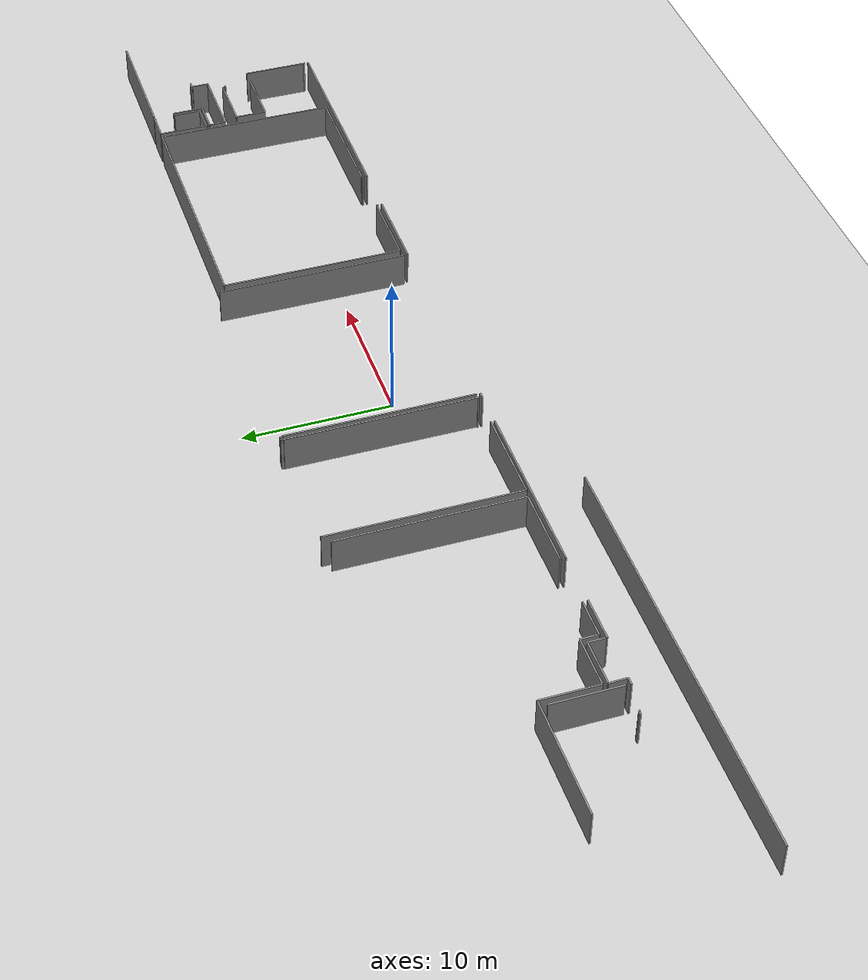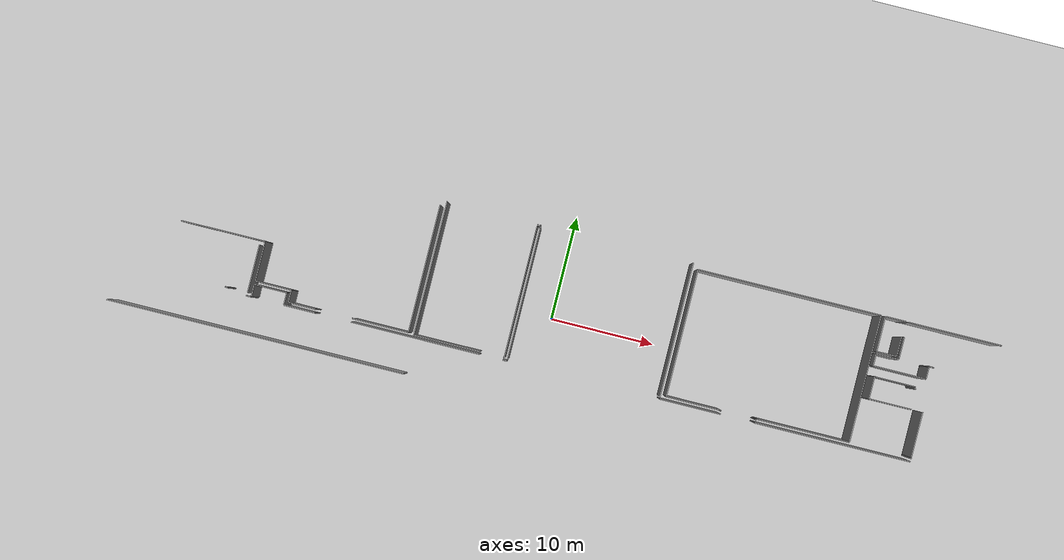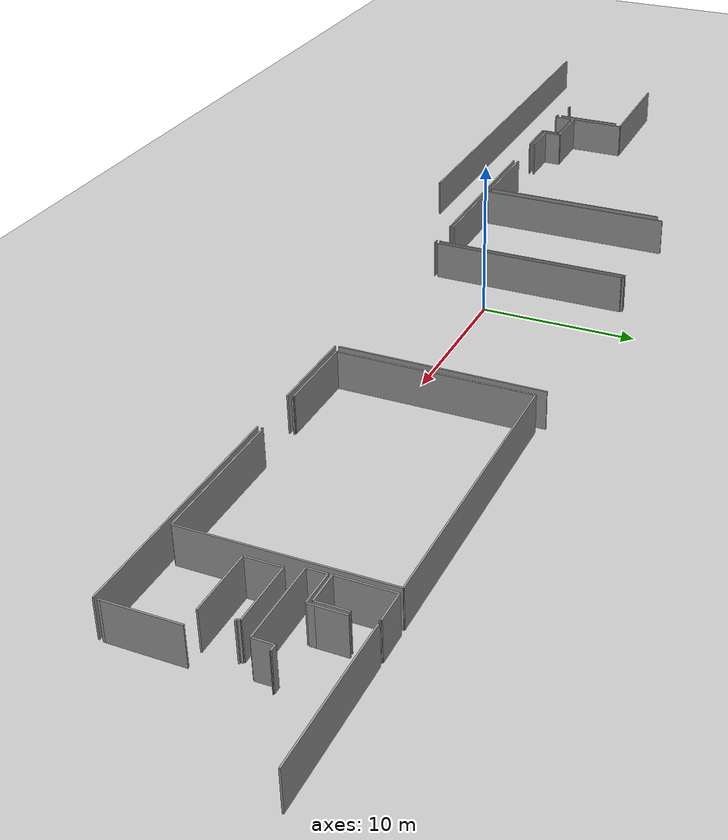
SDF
<sdf version="1.6">
 <world name="default">
  <model name="ground_plane">
   <static>1</static>
   <link name="link">
    <collision name="collision">
     <geometry><plane><normal>0 0 1</normal><size>100 100</size></plane></geometry>
     <surface><friction><ode><mu>100</mu><mu2>50</mu2></ode></friction></surface>
    </collision>
    <visual name="visual">
     <cast_shadows>0</cast_shadows>
     <geometry><plane><normal>0 0 1</normal><size>100 100</size></plane></geometry>
     <material>
      <script><uri>file://media/materials/scripts/gazebo.material</uri><name>Gazebo/Grey</name></script>
     </material>
    </visual>
   </link>
  </model>
  <model name="50041175">
   <static>1</static>
   <link name="Wall_46">
    <collision name="Wall_46_Collision">
     <geometry><box><size>4.62272663727 0.1 2.5</size></box></geometry>
     <pose>2.31136331863 0 1.25 0 0 0</pose>
    </collision>
    <visual name="Wall_46_Visual">
     <pose>2.31136331863 0 1.25 0 0 0</pose>
     <geometry><box><size>4.62272663727 0.1 2.5</size></box></geometry>
     <material>
      <script><uri>file://media/materials/scripts/gazebo.material</uri><name>Gazebo/Grey</name></script>
      <ambient>1 1 1 1</ambient>
     </material>
    </visual>
    <pose>25.7563895632 -8.23252799207 0 0 0 -1.57079632679</pose>
   </link>
   <link name="Wall_47">
    <collision name="Wall_47_Collision">
     <geometry><box><size>0.0831183355998 0.1 2.5</size></box></geometry>
     <pose>0.0415591677999 0 1.25 0 0 0</pose>
    </collision>
    <visual name="Wall_47_Visual">
     <pose>0.0415591677999 0 1.25 0 0 0</pose>
     <geometry><box><size>0.0831183355998 0.1 2.5</size></box></geometry>
     <material>
      <script><uri>file://media/materials/scripts/gazebo.material</uri><name>Gazebo/Grey</name></script>
      <ambient>1 1 1 1</ambient>
     </material>
    </visual>
    <pose>23.862333668 -12.8552546293 0 0 0 3.14159265359</pose>
   </link>
   <link name="Wall_48">
    <collision name="Wall_48_Collision">
     <geometry><box><size>0.0214785913094 0.1 2.5</size></box></geometry>
     <pose>0.0107392956547 0 1.25 0 0 0</pose>
    </collision>
    <visual name="Wall_48_Visual">
     <pose>0.0107392956547 0 1.25 0 0 0</pose>
     <geometry><box><size>0.0214785913094 0.1 2.5</size></box></geometry>
     <material>
      <script><uri>file://media/materials/scripts/gazebo.material</uri><name>Gazebo/Grey</name></script>
      <ambient>1 1 1 1</ambient>
     </material>
    </visual>
    <pose>23.7792153324 -12.8552546293 0 0 0 1.57079632679</pose>
   </link>
   <link name="Wall_49">
    <collision name="Wall_49_Collision">
     <geometry><box><size>0.205932167844 0.1 2.5</size></box></geometry>
     <pose>0.102966083922 0 1.25 0 0 0</pose>
    </collision>
    <visual name="Wall_49_Visual">
     <pose>0.102966083922 0 1.25 0 0 0</pose>
     <geometry><box><size>0.205932167844 0.1 2.5</size></box></geometry>
     <material>
      <script><uri>file://media/materials/scripts/gazebo.material</uri><name>Gazebo/Grey</name></script>
      <ambient>1 1 1 1</ambient>
     </material>
    </visual>
    <pose>23.7792153324 -12.833776038 0 0 0 3.12122510009</pose>
   </link>
   <link name="Wall_54">
    <collision name="Wall_54_Collision">
     <geometry><box><size>3.15239632449 0.1 2.5</size></box></geometry>
     <pose>1.57619816225 0 1.25 0 0 0</pose>
    </collision>
    <visual name="Wall_54_Visual">
     <pose>1.57619816225 0 1.25 0 0 0</pose>
     <geometry><box><size>3.15239632449 0.1 2.5</size></box></geometry>
     <material>
      <script><uri>file://media/materials/scripts/gazebo.material</uri><name>Gazebo/Grey</name></script>
      <ambient>1 1 1 1</ambient>
     </material>
    </visual>
    <pose>26.1831653597 -11.9643379129 0 0 0 0.0</pose>
   </link>
   <link name="Wall_55">
    <collision name="Wall_55_Collision">
     <geometry><box><size>1.14014463099 0.1 2.5</size></box></geometry>
     <pose>0.570072315494 0 1.25 0 0 0</pose>
    </collision>
    <visual name="Wall_55_Visual">
     <pose>0.570072315494 0 1.25 0 0 0</pose>
     <geometry><box><size>1.14014463099 0.1 2.5</size></box></geometry>
     <material>
      <script><uri>file://media/materials/scripts/gazebo.material</uri><name>Gazebo/Grey</name></script>
      <ambient>1 1 1 1</ambient>
     </material>
    </visual>
    <pose>29.3355616842 -11.9643379129 0 0 0 -1.57079632679</pose>
   </link>
   <link name="Wall_56">
    <collision name="Wall_56_Collision">
     <geometry><box><size>1.14019580817 0.1 2.5</size></box></geometry>
     <pose>0.570097904083 0 1.25 0 0 0</pose>
    </collision>
    <visual name="Wall_56_Visual">
     <pose>0.570097904083 0 1.25 0 0 0</pose>
     <geometry><box><size>1.14019580817 0.1 2.5</size></box></geometry>
     <material>
      <script><uri>file://media/materials/scripts/gazebo.material</uri><name>Gazebo/Grey</name></script>
      <ambient>1 1 1 1</ambient>
     </material>
    </visual>
    <pose>26.1939682015 -13.1044825439 0 0 0 1.58027101819</pose>
   </link>
   <link name="Wall_59">
    <collision name="Wall_59_Collision">
     <geometry><box><size>12.3390058844 0.1 2.5</size></box></geometry>
     <pose>6.16950294219 0 1.25 0 0 0</pose>
    </collision>
    <visual name="Wall_59_Visual">
     <pose>6.16950294219 0 1.25 0 0 0</pose>
     <geometry><box><size>12.3390058844 0.1 2.5</size></box></geometry>
     <material>
      <script><uri>file://media/materials/scripts/gazebo.material</uri><name>Gazebo/Grey</name></script>
      <ambient>1 1 1 1</ambient>
     </material>
    </visual>
    <pose>41.3104482544 -0.478121068083 0 0 0 -1.57079632679</pose>
   </link>
   <link name="Wall_60">
    <collision name="Wall_60_Collision">
     <geometry><box><size>5.47310092396 0.1 2.5</size></box></geometry>
     <pose>2.73655046198 0 1.25 0 0 0</pose>
    </collision>
    <visual name="Wall_60_Visual">
     <pose>2.73655046198 0 1.25 0 0 0</pose>
     <geometry><box><size>5.47310092396 0.1 2.5</size></box></geometry>
     <material>
      <script><uri>file://media/materials/scripts/gazebo.material</uri><name>Gazebo/Grey</name></script>
      <ambient>1 1 1 1</ambient>
     </material>
    </visual>
    <pose>41.3104482544 -12.8171269525 0 0 0 3.14159265359</pose>
   </link>
   <link name="Wall_61">
    <collision name="Wall_61_Collision">
     <geometry><box><size>2.62775949061 0.1 2.5</size></box></geometry>
     <pose>1.31387974531 0 1.25 0 0 0</pose>
    </collision>
    <visual name="Wall_61_Visual">
     <pose>1.31387974531 0 1.25 0 0 0</pose>
     <geometry><box><size>2.62775949061 0.1 2.5</size></box></geometry>
     <material>
      <script><uri>file://media/materials/scripts/gazebo.material</uri><name>Gazebo/Grey</name></script>
      <ambient>1 1 1 1</ambient>
     </material>
    </visual>
    <pose>32.311553957 -12.8171269525 0 0 0 3.14159265359</pose>
   </link>
   <link name="Wall_62">
    <collision name="Wall_62_Collision">
     <geometry><box><size>1.18411855166 0.1 2.5</size></box></geometry>
     <pose>0.592059275828 0 1.25 0 0 0</pose>
    </collision>
    <visual name="Wall_62_Visual">
     <pose>0.592059275828 0 1.25 0 0 0</pose>
     <geometry><box><size>1.18411855166 0.1 2.5</size></box></geometry>
     <material>
      <script><uri>file://media/materials/scripts/gazebo.material</uri><name>Gazebo/Grey</name></script>
      <ambient>1 1 1 1</ambient>
     </material>
    </visual>
    <pose>29.6837944664 -12.8171269525 0 0 0 1.57079632679</pose>
   </link>
   <link name="Wall_63">
    <collision name="Wall_63_Collision">
     <geometry><box><size>3.48054853018 0.1 2.5</size></box></geometry>
     <pose>1.74027426509 0 1.25 0 0 0</pose>
    </collision>
    <visual name="Wall_63_Visual">
     <pose>1.74027426509 0 1.25 0 0 0</pose>
     <geometry><box><size>3.48054853018 0.1 2.5</size></box></geometry>
     <material>
      <script><uri>file://media/materials/scripts/gazebo.material</uri><name>Gazebo/Grey</name></script>
      <ambient>1 1 1 1</ambient>
     </material>
    </visual>
    <pose>29.6837944664 -11.6330084008 0 0 0 3.14159265359</pose>
   </link>
   <link name="Wall_64">
    <collision name="Wall_64_Collision">
     <geometry><box><size>3.84301564506 0.1 2.5</size></box></geometry>
     <pose>1.92150782253 0 1.25 0 0 0</pose>
    </collision>
    <visual name="Wall_64_Visual">
     <pose>1.92150782253 0 1.25 0 0 0</pose>
     <geometry><box><size>3.84301564506 0.1 2.5</size></box></geometry>
     <material>
      <script><uri>file://media/materials/scripts/gazebo.material</uri><name>Gazebo/Grey</name></script>
      <ambient>1 1 1 1</ambient>
     </material>
    </visual>
    <pose>26.2032459362 -11.6330084008 0 0 0 1.57079632679</pose>
   </link>
   <link name="Wall_65">
    <collision name="Wall_65_Collision">
     <geometry><box><size>8.17282993045 0.1 2.5</size></box></geometry>
     <pose>4.08641496522 0 1.25 0 0 0</pose>
    </collision>
    <visual name="Wall_65_Visual">
     <pose>4.08641496522 0 1.25 0 0 0</pose>
     <geometry><box><size>8.17282993045 0.1 2.5</size></box></geometry>
     <material>
      <script><uri>file://media/materials/scripts/gazebo.material</uri><name>Gazebo/Grey</name></script>
      <ambient>1 1 1 1</ambient>
     </material>
    </visual>
    <pose>26.2032459362 -7.78999275574 0 0 0 -3.13865358949</pose>
   </link>
   <link name="Wall_66">
    <collision name="Wall_66_Collision">
     <geometry><box><size>12.9335434592 0.1 2.5</size></box></geometry>
     <pose>6.4667717296 0 1.25 0 0 0</pose>
    </collision>
    <visual name="Wall_66_Visual">
     <pose>6.4667717296 0 1.25 0 0 0</pose>
     <geometry><box><size>12.9335434592 0.1 2.5</size></box></geometry>
     <material>
      <script><uri>file://media/materials/scripts/gazebo.material</uri><name>Gazebo/Grey</name></script>
      <ambient>1 1 1 1</ambient>
     </material>
    </visual>
    <pose>41.8658414143 -12.9335434592 0 0 0 1.57079632679</pose>
   </link>
   <link name="Wall_67">
    <collision name="Wall_67_Collision">
     <geometry><box><size>0.179708450364 0.1 2.5</size></box></geometry>
     <pose>0.0898542251821 0 1.25 0 0 0</pose>
    </collision>
    <visual name="Wall_67_Visual">
     <pose>0.0898542251821 0 1.25 0 0 0</pose>
     <geometry><box><size>0.179708450364 0.1 2.5</size></box></geometry>
     <material>
      <script><uri>file://media/materials/scripts/gazebo.material</uri><name>Gazebo/Grey</name></script>
      <ambient>1 1 1 1</ambient>
     </material>
    </visual>
    <pose>50.664565408 -0.0 0 0 0 -1.57079632679</pose>
   </link>
   <link name="Wall_68">
    <collision name="Wall_68_Collision">
     <geometry><box><size>0.0475325038445 0.1 2.5</size></box></geometry>
     <pose>0.0237662519223 0 1.25 0 0 0</pose>
    </collision>
    <visual name="Wall_68_Visual">
     <pose>0.0237662519223 0 1.25 0 0 0</pose>
     <geometry><box><size>0.0475325038445 0.1 2.5</size></box></geometry>
     <material>
      <script><uri>file://media/materials/scripts/gazebo.material</uri><name>Gazebo/Grey</name></script>
      <ambient>1 1 1 1</ambient>
     </material>
    </visual>
    <pose>50.664565408 -0.179708450364 0 0 0 3.14159265359</pose>
   </link>
   <link name="Wall_69">
    <collision name="Wall_69_Collision">
     <geometry><box><size>12.7317209562 0.1 2.5</size></box></geometry>
     <pose>6.36586047812 0 1.25 0 0 0</pose>
    </collision>
    <visual name="Wall_69_Visual">
     <pose>6.36586047812 0 1.25 0 0 0</pose>
     <geometry><box><size>12.7317209562 0.1 2.5</size></box></geometry>
     <material>
      <script><uri>file://media/materials/scripts/gazebo.material</uri><name>Gazebo/Grey</name></script>
      <ambient>1 1 1 1</ambient>
     </material>
    </visual>
    <pose>50.6170329042 -0.179708450364 0 0 0 -1.57079632679</pose>
   </link>
   <link name="Wall_70">
    <collision name="Wall_70_Collision">
     <geometry><box><size>0.106503310753 0.1 2.5</size></box></geometry>
     <pose>0.0532516553766 0 1.25 0 0 0</pose>
    </collision>
    <visual name="Wall_70_Visual">
     <pose>0.0532516553766 0 1.25 0 0 0</pose>
     <geometry><box><size>0.106503310753 0.1 2.5</size></box></geometry>
     <material>
      <script><uri>file://media/materials/scripts/gazebo.material</uri><name>Gazebo/Grey</name></script>
      <ambient>1 1 1 1</ambient>
     </material>
    </visual>
    <pose>50.6170329042 -12.9114294066 0 0 0 3.14159265359</pose>
   </link>
   <link name="Wall_71">
    <collision name="Wall_71_Collision">
     <geometry><box><size>6.38299269407 0.1 2.5</size></box></geometry>
     <pose>3.19149634704 0 1.25 0 0 0</pose>
    </collision>
    <visual name="Wall_71_Visual">
     <pose>3.19149634704 0 1.25 0 0 0</pose>
     <geometry><box><size>6.38299269407 0.1 2.5</size></box></geometry>
     <material>
      <script><uri>file://media/materials/scripts/gazebo.material</uri><name>Gazebo/Grey</name></script>
      <ambient>1 1 1 1</ambient>
     </material>
    </visual>
    <pose>48.2487958009 -12.9114294066 0 0 0 -3.13812811934</pose>
   </link>
   <link name="Wall_72">
    <collision name="Wall_72_Collision">
     <geometry><box><size>12.7401090452 0.1 2.5</size></box></geometry>
     <pose>6.37005452258 0 1.25 0 0 0</pose>
    </collision>
    <visual name="Wall_72_Visual">
     <pose>6.37005452258 0 1.25 0 0 0</pose>
     <geometry><box><size>12.7401090452 0.1 2.5</size></box></geometry>
     <material>
      <script><uri>file://media/materials/scripts/gazebo.material</uri><name>Gazebo/Grey</name></script>
      <ambient>1 1 1 1</ambient>
     </material>
    </visual>
    <pose>50.9505229846 -12.9246470013 0 0 0 1.57079632679</pose>
   </link>
   <link name="Wall_73">
    <collision name="Wall_73_Collision">
     <geometry><box><size>0.0746031544298 0.1 2.5</size></box></geometry>
     <pose>0.0373015772149 0 1.25 0 0 0</pose>
    </collision>
    <visual name="Wall_73_Visual">
     <pose>0.0373015772149 0 1.25 0 0 0</pose>
     <geometry><box><size>0.0746031544298 0.1 2.5</size></box></geometry>
     <material>
      <script><uri>file://media/materials/scripts/gazebo.material</uri><name>Gazebo/Grey</name></script>
      <ambient>1 1 1 1</ambient>
     </material>
    </visual>
    <pose>50.9505229846 -0.184537956102 0 0 0 3.14159265359</pose>
   </link>
   <link name="Wall_74">
    <collision name="Wall_74_Collision">
     <geometry><box><size>0.180598096158 0.1 2.5</size></box></geometry>
     <pose>0.090299048079 0 1.25 0 0 0</pose>
    </collision>
    <visual name="Wall_74_Visual">
     <pose>0.090299048079 0 1.25 0 0 0</pose>
     <geometry><box><size>0.180598096158 0.1 2.5</size></box></geometry>
     <material>
      <script><uri>file://media/materials/scripts/gazebo.material</uri><name>Gazebo/Grey</name></script>
      <ambient>1 1 1 1</ambient>
     </material>
    </visual>
    <pose>50.8759198302 -0.184537956102 0 0 0 1.57079632679</pose>
   </link>
   <link name="Wall_75">
    <collision name="Wall_75_Collision">
     <geometry><box><size>12.9157505433 0.1 2.5</size></box></geometry>
     <pose>6.45787527166 0 1.25 0 0 0</pose>
    </collision>
    <visual name="Wall_75_Visual">
     <pose>6.45787527166 0 1.25 0 0 0</pose>
     <geometry><box><size>12.9157505433 0.1 2.5</size></box></geometry>
     <material>
      <script><uri>file://media/materials/scripts/gazebo.material</uri><name>Gazebo/Grey</name></script>
      <ambient>1 1 1 1</ambient>
     </material>
    </visual>
    <pose>65.6829302391 -0.00393985994433 0 0 0 -1.57079632679</pose>
   </link>
   <link name="Wall_76">
    <collision name="Wall_76_Collision">
     <geometry><box><size>0.00535750769756 0.1 2.5</size></box></geometry>
     <pose>0.00267875384878 0 1.25 0 0 0</pose>
    </collision>
    <visual name="Wall_76_Visual">
     <pose>0.00267875384878 0 1.25 0 0 0</pose>
     <geometry><box><size>0.00535750769756 0.1 2.5</size></box></geometry>
     <material>
      <script><uri>file://media/materials/scripts/gazebo.material</uri><name>Gazebo/Grey</name></script>
      <ambient>1 1 1 1</ambient>
     </material>
    </visual>
    <pose>50.9525564607 -12.9196904033 0 0 0 -1.96011304863</pose>
   </link>
   <link name="Wall_77">
    <collision name="Wall_77_Collision">
     <geometry><box><size>12.2861355058 0.1 2.5</size></box></geometry>
     <pose>6.14306775288 0 1.25 0 0 0</pose>
    </collision>
    <visual name="Wall_77_Visual">
     <pose>6.14306775288 0 1.25 0 0 0</pose>
     <geometry><box><size>12.2861355058 0.1 2.5</size></box></geometry>
     <material>
      <script><uri>file://media/materials/scripts/gazebo.material</uri><name>Gazebo/Grey</name></script>
      <ambient>1 1 1 1</ambient>
     </material>
    </visual>
    <pose>66.2538286542 -12.7721362937 0 0 0 1.57079632679</pose>
   </link>
   <link name="Wall_78">
    <collision name="Wall_78_Collision">
     <geometry><box><size>17.7294968418 0.1 2.5</size></box></geometry>
     <pose>8.86474842088 0 1.25 0 0 0</pose>
    </collision>
    <visual name="Wall_78_Visual">
     <pose>8.86474842088 0 1.25 0 0 0</pose>
     <geometry><box><size>17.7294968418 0.1 2.5</size></box></geometry>
     <material>
      <script><uri>file://media/materials/scripts/gazebo.material</uri><name>Gazebo/Grey</name></script>
      <ambient>1 1 1 1</ambient>
     </material>
    </visual>
    <pose>66.2538286542 -0.486000787972 0 0 0 0.0</pose>
   </link>
   <link name="Wall_79">
    <collision name="Wall_79_Collision">
     <geometry><box><size>12.280797631 0.1 2.5</size></box></geometry>
     <pose>6.1403988155 0 1.25 0 0 0</pose>
    </collision>
    <visual name="Wall_79_Visual">
     <pose>6.1403988155 0 1.25 0 0 0</pose>
     <geometry><box><size>12.280797631 0.1 2.5</size></box></geometry>
     <material>
      <script><uri>file://media/materials/scripts/gazebo.material</uri><name>Gazebo/Grey</name></script>
      <ambient>1 1 1 1</ambient>
     </material>
    </visual>
    <pose>83.983325496 -0.486000787972 0 0 0 -1.57079632679</pose>
   </link>
   <link name="Wall_80">
    <collision name="Wall_80_Collision">
     <geometry><box><size>8.94322788912 0.1 2.5</size></box></geometry>
     <pose>4.47161394456 0 1.25 0 0 0</pose>
    </collision>
    <visual name="Wall_80_Visual">
     <pose>4.47161394456 0 1.25 0 0 0</pose>
     <geometry><box><size>8.94322788912 0.1 2.5</size></box></geometry>
     <material>
      <script><uri>file://media/materials/scripts/gazebo.material</uri><name>Gazebo/Grey</name></script>
      <ambient>1 1 1 1</ambient>
     </material>
    </visual>
    <pose>83.983325496 -12.766798419 0 0 0 3.14159265359</pose>
   </link>
   <link name="Wall_81">
    <collision name="Wall_81_Collision">
     <geometry><box><size>0.0660879732598 0.1 2.5</size></box></geometry>
     <pose>0.0330439866299 0 1.25 0 0 0</pose>
    </collision>
    <visual name="Wall_81_Visual">
     <pose>0.0330439866299 0 1.25 0 0 0</pose>
     <geometry><box><size>0.0660879732598 0.1 2.5</size></box></geometry>
     <material>
      <script><uri>file://media/materials/scripts/gazebo.material</uri><name>Gazebo/Grey</name></script>
      <ambient>1 1 1 1</ambient>
     </material>
    </visual>
    <pose>75.0400976069 -12.766798419 0 0 0 -1.57079632679</pose>
   </link>
   <link name="Wall_82">
    <collision name="Wall_82_Collision">
     <geometry><box><size>0.114637215154 0.1 2.5</size></box></geometry>
     <pose>0.0573186075772 0 1.25 0 0 0</pose>
    </collision>
    <visual name="Wall_82_Visual">
     <pose>0.0573186075772 0 1.25 0 0 0</pose>
     <geometry><box><size>0.114637215154 0.1 2.5</size></box></geometry>
     <material>
      <script><uri>file://media/materials/scripts/gazebo.material</uri><name>Gazebo/Grey</name></script>
      <ambient>1 1 1 1</ambient>
     </material>
    </visual>
    <pose>75.0400976069 -12.8328863922 0 0 0 3.14159265359</pose>
   </link>
   <link name="Wall_83">
    <collision name="Wall_83_Collision">
     <geometry><box><size>0.094556638664 0.1 2.5</size></box></geometry>
     <pose>0.047278319332 0 1.25 0 0 0</pose>
    </collision>
    <visual name="Wall_83_Visual">
     <pose>0.047278319332 0 1.25 0 0 0</pose>
     <geometry><box><size>0.094556638664 0.1 2.5</size></box></geometry>
     <material>
      <script><uri>file://media/materials/scripts/gazebo.material</uri><name>Gazebo/Grey</name></script>
      <ambient>1 1 1 1</ambient>
     </material>
    </visual>
    <pose>71.6111485327 -12.8328863922 0 0 0 3.14159265359</pose>
   </link>
   <link name="Wall_84">
    <collision name="Wall_84_Collision">
     <geometry><box><size>0.0526161940953 0.1 2.5</size></box></geometry>
     <pose>0.0263080970476 0 1.25 0 0 0</pose>
    </collision>
    <visual name="Wall_84_Visual">
     <pose>0.0263080970476 0 1.25 0 0 0</pose>
     <geometry><box><size>0.0526161940953 0.1 2.5</size></box></geometry>
     <material>
      <script><uri>file://media/materials/scripts/gazebo.material</uri><name>Gazebo/Grey</name></script>
      <ambient>1 1 1 1</ambient>
     </material>
    </visual>
    <pose>71.5165918941 -12.8328863922 0 0 0 1.57079632679</pose>
   </link>
   <link name="Wall_85">
    <collision name="Wall_85_Collision">
     <geometry><box><size>5.26276952554 0.1 2.5</size></box></geometry>
     <pose>2.63138476277 0 1.25 0 0 0</pose>
    </collision>
    <visual name="Wall_85_Visual">
     <pose>2.63138476277 0 1.25 0 0 0</pose>
     <geometry><box><size>5.26276952554 0.1 2.5</size></box></geometry>
     <material>
      <script><uri>file://media/materials/scripts/gazebo.material</uri><name>Gazebo/Grey</name></script>
      <ambient>1 1 1 1</ambient>
     </material>
    </visual>
    <pose>71.5165918941 -12.7802701981 0 0 0 3.14004709709</pose>
   </link>
   <link name="Wall_86">
    <collision name="Wall_86_Collision">
     <geometry><box><size>4.37858241297 0.1 2.5</size></box></geometry>
     <pose>2.18929120649 0 1.25 0 0 0</pose>
    </collision>
    <visual name="Wall_86_Visual">
     <pose>2.18929120649 0 1.25 0 0 0</pose>
     <geometry><box><size>4.37858241297 0.1 2.5</size></box></geometry>
     <material>
      <script><uri>file://media/materials/scripts/gazebo.material</uri><name>Gazebo/Grey</name></script>
      <ambient>1 1 1 1</ambient>
     </material>
    </visual>
    <pose>89.9616181386 -12.7396006761 0 0 0 1.57079632679</pose>
   </link>
   <link name="Wall_111">
    <collision name="Wall_111_Collision">
     <geometry><box><size>0.136497615741 0.1 2.5</size></box></geometry>
     <pose>0.0682488078706 0 1.25 0 0 0</pose>
    </collision>
    <visual name="Wall_111_Visual">
     <pose>0.0682488078706 0 1.25 0 0 0</pose>
     <geometry><box><size>0.136497615741 0.1 2.5</size></box></geometry>
     <material>
      <script><uri>file://media/materials/scripts/gazebo.material</uri><name>Gazebo/Grey</name></script>
      <ambient>1 1 1 1</ambient>
     </material>
    </visual>
    <pose>89.9612368618 -12.8760977594 0 0 0 1.56800303797</pose>
   </link>
   <link name="Wall_112">
    <collision name="Wall_112_Collision">
     <geometry><box><size>2.15256154443 0.1 2.5</size></box></geometry>
     <pose>1.07628077221 0 1.25 0 0 0</pose>
    </collision>
    <visual name="Wall_112_Visual">
     <pose>1.07628077221 0 1.25 0 0 0</pose>
     <geometry><box><size>2.15256154443 0.1 2.5</size></box></geometry>
     <material>
      <script><uri>file://media/materials/scripts/gazebo.material</uri><name>Gazebo/Grey</name></script>
      <ambient>1 1 1 1</ambient>
     </material>
    </visual>
    <pose>84.7740935145 -8.37118564366 0 0 0 1.57079632679</pose>
   </link>
   <link name="Wall_113">
    <collision name="Wall_113_Collision">
     <geometry><box><size>3.95396718478 0.1 2.5</size></box></geometry>
     <pose>1.97698359239 0 1.25 0 0 0</pose>
    </collision>
    <visual name="Wall_113_Visual">
     <pose>1.97698359239 0 1.25 0 0 0</pose>
     <geometry><box><size>3.95396718478 0.1 2.5</size></box></geometry>
     <material>
      <script><uri>file://media/materials/scripts/gazebo.material</uri><name>Gazebo/Grey</name></script>
      <ambient>1 1 1 1</ambient>
     </material>
    </visual>
    <pose>84.7740935145 -6.21862409923 0 0 0 0.0</pose>
   </link>
   <link name="Wall_114">
    <collision name="Wall_114_Collision">
     <geometry><box><size>0.190257107634 0.1 2.5</size></box></geometry>
     <pose>0.0951285538172 0 1.25 0 0 0</pose>
    </collision>
    <visual name="Wall_114_Visual">
     <pose>0.0951285538172 0 1.25 0 0 0</pose>
     <geometry><box><size>0.190257107634 0.1 2.5</size></box></geometry>
     <material>
      <script><uri>file://media/materials/scripts/gazebo.material</uri><name>Gazebo/Grey</name></script>
      <ambient>1 1 1 1</ambient>
     </material>
    </visual>
    <pose>88.7280606993 -6.21862409923 0 0 0 -1.57079632679</pose>
   </link>
   <link name="Wall_115">
    <collision name="Wall_115_Collision">
     <geometry><box><size>0.148697939835 0.1 2.5</size></box></geometry>
     <pose>0.0743489699173 0 1.25 0 0 0</pose>
    </collision>
    <visual name="Wall_115_Visual">
     <pose>0.0743489699173 0 1.25 0 0 0</pose>
     <geometry><box><size>0.148697939835 0.1 2.5</size></box></geometry>
     <material>
      <script><uri>file://media/materials/scripts/gazebo.material</uri><name>Gazebo/Grey</name></script>
      <ambient>1 1 1 1</ambient>
     </material>
    </visual>
    <pose>88.7280606993 -6.40888120687 0 0 0 0.0</pose>
   </link>
   <link name="Wall_116">
    <collision name="Wall_116_Collision">
     <geometry><box><size>4.10266616597 0.1 2.5</size></box></geometry>
     <pose>2.05133308298 0 1.25 0 0 0</pose>
    </collision>
    <visual name="Wall_116_Visual">
     <pose>2.05133308298 0 1.25 0 0 0</pose>
     <geometry><box><size>4.10266616597 0.1 2.5</size></box></geometry>
     <material>
      <script><uri>file://media/materials/scripts/gazebo.material</uri><name>Gazebo/Grey</name></script>
      <ambient>1 1 1 1</ambient>
     </material>
    </visual>
    <pose>88.8767586391 -8.36826252176 0 0 0 -3.14088016029</pose>
   </link>
   <link name="Wall_117">
    <collision name="Wall_117_Collision">
     <geometry><box><size>1.15323513338 0.1 2.5</size></box></geometry>
     <pose>0.576617566692 0 1.25 0 0 0</pose>
    </collision>
    <visual name="Wall_117_Visual">
     <pose>0.576617566692 0 1.25 0 0 0</pose>
     <geometry><box><size>1.15323513338 0.1 2.5</size></box></geometry>
     <material>
      <script><uri>file://media/materials/scripts/gazebo.material</uri><name>Gazebo/Grey</name></script>
      <ambient>1 1 1 1</ambient>
     </material>
    </visual>
    <pose>84.4052717868 -5.25844210312 0 0 0 1.57079632679</pose>
   </link>
   <link name="Wall_118">
    <collision name="Wall_118_Collision">
     <geometry><box><size>2.1784883647 0.1 2.5</size></box></geometry>
     <pose>1.08924418235 0 1.25 0 0 0</pose>
    </collision>
    <visual name="Wall_118_Visual">
     <pose>1.08924418235 0 1.25 0 0 0</pose>
     <geometry><box><size>2.1784883647 0.1 2.5</size></box></geometry>
     <material>
      <script><uri>file://media/materials/scripts/gazebo.material</uri><name>Gazebo/Grey</name></script>
      <ambient>1 1 1 1</ambient>
     </material>
    </visual>
    <pose>84.4052717868 -4.10520696974 0 0 0 0.0</pose>
   </link>
   <link name="Wall_119">
    <collision name="Wall_119_Collision">
     <geometry><box><size>1.16035229973 0.1 2.5</size></box></geometry>
     <pose>0.580176149867 0 1.25 0 0 0</pose>
    </collision>
    <visual name="Wall_119_Visual">
     <pose>0.580176149867 0 1.25 0 0 0</pose>
     <geometry><box><size>1.16035229973 0.1 2.5</size></box></geometry>
     <material>
      <script><uri>file://media/materials/scripts/gazebo.material</uri><name>Gazebo/Grey</name></script>
      <ambient>1 1 1 1</ambient>
     </material>
    </visual>
    <pose>89.5203538248 -4.10520696974 0 0 0 -1.57079632679</pose>
   </link>
   <link name="Wall_120">
    <collision name="Wall_120_Collision">
     <geometry><box><size>5.11508698949 0.1 2.5</size></box></geometry>
     <pose>2.55754349475 0 1.25 0 0 0</pose>
    </collision>
    <visual name="Wall_120_Visual">
     <pose>2.55754349475 0 1.25 0 0 0</pose>
     <geometry><box><size>5.11508698949 0.1 2.5</size></box></geometry>
     <material>
      <script><uri>file://media/materials/scripts/gazebo.material</uri><name>Gazebo/Grey</name></script>
      <ambient>1 1 1 1</ambient>
     </material>
    </visual>
    <pose>89.5203538248 -5.26555926947 0 0 0 3.14020124643</pose>
   </link>
   <link name="Wall_121">
    <collision name="Wall_121_Collision">
     <geometry><box><size>3.39374451915 0.1 2.5</size></box></geometry>
     <pose>1.69687225957 0 1.25 0 0 0</pose>
    </collision>
    <visual name="Wall_121_Visual">
     <pose>1.69687225957 0 1.25 0 0 0</pose>
     <geometry><box><size>3.39374451915 0.1 2.5</size></box></geometry>
     <material>
      <script><uri>file://media/materials/scripts/gazebo.material</uri><name>Gazebo/Grey</name></script>
      <ambient>1 1 1 1</ambient>
     </material>
    </visual>
    <pose>84.390020716 -3.87847438456 0 0 0 1.57079632679</pose>
   </link>
   <link name="Wall_122">
    <collision name="Wall_122_Collision">
     <geometry><box><size>1.95073904147 0.1 2.5</size></box></geometry>
     <pose>0.975369520735 0 1.25 0 0 0</pose>
    </collision>
    <visual name="Wall_122_Visual">
     <pose>0.975369520735 0 1.25 0 0 0</pose>
     <geometry><box><size>1.95073904147 0.1 2.5</size></box></geometry>
     <material>
      <script><uri>file://media/materials/scripts/gazebo.material</uri><name>Gazebo/Grey</name></script>
      <ambient>1 1 1 1</ambient>
     </material>
    </visual>
    <pose>84.390020716 -0.484729865409 0 0 0 0.0</pose>
   </link>
   <link name="Wall_123">
    <collision name="Wall_123_Collision">
     <geometry><box><size>0.0814661362683 0.1 2.5</size></box></geometry>
     <pose>0.0407330681342 0 1.25 0 0 0</pose>
    </collision>
    <visual name="Wall_123_Visual">
     <pose>0.0407330681342 0 1.25 0 0 0</pose>
     <geometry><box><size>0.0814661362683 0.1 2.5</size></box></geometry>
     <material>
      <script><uri>file://media/materials/scripts/gazebo.material</uri><name>Gazebo/Grey</name></script>
      <ambient>1 1 1 1</ambient>
     </material>
    </visual>
    <pose>86.3407597575 -0.484729865409 0 0 0 -1.57079632679</pose>
   </link>
   <link name="Wall_124">
    <collision name="Wall_124_Collision">
     <geometry><box><size>1.89037021974 0.1 2.5</size></box></geometry>
     <pose>0.945185109871 0 1.25 0 0 0</pose>
    </collision>
    <visual name="Wall_124_Visual">
     <pose>0.945185109871 0 1.25 0 0 0</pose>
     <geometry><box><size>1.89037021974 0.1 2.5</size></box></geometry>
     <material>
      <script><uri>file://media/materials/scripts/gazebo.material</uri><name>Gazebo/Grey</name></script>
      <ambient>1 1 1 1</ambient>
     </material>
    </visual>
    <pose>86.3407597575 -1.97730132303 0 0 0 -1.57079632679</pose>
   </link>
   <link name="Wall_125">
    <collision name="Wall_125_Collision">
     <geometry><box><size>1.95076895334 0.1 2.5</size></box></geometry>
     <pose>0.975384476669 0 1.25 0 0 0</pose>
    </collision>
    <visual name="Wall_125_Visual">
     <pose>0.975384476669 0 1.25 0 0 0</pose>
     <geometry><box><size>1.95076895334 0.1 2.5</size></box></geometry>
     <material>
      <script><uri>file://media/materials/scripts/gazebo.material</uri><name>Gazebo/Grey</name></script>
      <ambient>1 1 1 1</ambient>
     </material>
    </visual>
    <pose>86.3407597575 -3.86767154277 0 0 0 -3.13605489015</pose>
   </link>
   <link name="Wall_160">
    <collision name="Wall_160_Collision">
     <geometry><box><size>1.71955822732 0.1 2.5</size></box></geometry>
     <pose>0.859779113659 0 1.25 0 0 0</pose>
    </collision>
    <visual name="Wall_160_Visual">
     <pose>0.859779113659 0 1.25 0 0 0</pose>
     <geometry><box><size>1.71955822732 0.1 2.5</size></box></geometry>
     <material>
      <script><uri>file://media/materials/scripts/gazebo.material</uri><name>Gazebo/Grey</name></script>
      <ambient>1 1 1 1</ambient>
     </material>
    </visual>
    <pose>86.589479303 -3.65898605798 0 0 0 1.57079632679</pose>
   </link>
   <link name="Wall_161">
    <collision name="Wall_161_Collision">
     <geometry><box><size>0.0546496701956 0.1 2.5</size></box></geometry>
     <pose>0.0273248350978 0 1.25 0 0 0</pose>
    </collision>
    <visual name="Wall_161_Visual">
     <pose>0.0273248350978 0 1.25 0 0 0</pose>
     <geometry><box><size>0.0546496701956 0.1 2.5</size></box></geometry>
     <material>
      <script><uri>file://media/materials/scripts/gazebo.material</uri><name>Gazebo/Grey</name></script>
      <ambient>1 1 1 1</ambient>
     </material>
    </visual>
    <pose>86.589479303 -0.548148901287 0 0 0 1.57079632679</pose>
   </link>
   <link name="Wall_162">
    <collision name="Wall_162_Collision">
     <geometry><box><size>9.06218624099 0.1 2.5</size></box></geometry>
     <pose>4.5310931205 0 1.25 0 0 0</pose>
    </collision>
    <visual name="Wall_162_Visual">
     <pose>4.5310931205 0 1.25 0 0 0</pose>
     <geometry><box><size>9.06218624099 0.1 2.5</size></box></geometry>
     <material>
      <script><uri>file://media/materials/scripts/gazebo.material</uri><name>Gazebo/Grey</name></script>
      <ambient>1 1 1 1</ambient>
     </material>
    </visual>
    <pose>86.589479303 -0.493499231092 0 0 0 0.0</pose>
   </link>
   <link name="Wall_165">
    <collision name="Wall_165_Collision">
     <geometry><box><size>0.0369838465742 0.1 2.5</size></box></geometry>
     <pose>0.0184919232871 0 1.25 0 0 0</pose>
    </collision>
    <visual name="Wall_165_Visual">
     <pose>0.0184919232871 0 1.25 0 0 0</pose>
     <geometry><box><size>0.0369838465742 0.1 2.5</size></box></geometry>
     <material>
      <script><uri>file://media/materials/scripts/gazebo.material</uri><name>Gazebo/Grey</name></script>
      <ambient>1 1 1 1</ambient>
     </material>
    </visual>
    <pose>89.9331494732 -4.08398256294 0 0 0 1.57079632679</pose>
   </link>
   <link name="Wall_166">
    <collision name="Wall_166_Collision">
     <geometry><box><size>0.42067536825 0.1 2.5</size></box></geometry>
     <pose>0.210337684125 0 1.25 0 0 0</pose>
    </collision>
    <visual name="Wall_166_Visual">
     <pose>0.210337684125 0 1.25 0 0 0</pose>
     <geometry><box><size>0.42067536825 0.1 2.5</size></box></geometry>
     <material>
      <script><uri>file://media/materials/scripts/gazebo.material</uri><name>Gazebo/Grey</name></script>
      <ambient>1 1 1 1</ambient>
     </material>
    </visual>
    <pose>89.9331494732 -4.04699871637 0 0 0 3.14159265359</pose>
   </link>
   <link name="Wall_167">
    <collision name="Wall_167_Collision">
     <geometry><box><size>0.388013678289 0.1 2.5</size></box></geometry>
     <pose>0.194006839145 0 1.25 0 0 0</pose>
    </collision>
    <visual name="Wall_167_Visual">
     <pose>0.194006839145 0 1.25 0 0 0</pose>
     <geometry><box><size>0.388013678289 0.1 2.5</size></box></geometry>
     <material>
      <script><uri>file://media/materials/scripts/gazebo.material</uri><name>Gazebo/Grey</name></script>
      <ambient>1 1 1 1</ambient>
     </material>
    </visual>
    <pose>86.5903689488 -4.04699871637 0 0 0 1.5730891495</pose>
   </link>
   <link name="Wall_174">
    <collision name="Wall_174_Collision">
     <geometry><box><size>0.506081364462 0.1 2.5</size></box></geometry>
     <pose>0.253040682231 0 1.25 0 0 0</pose>
    </collision>
    <visual name="Wall_174_Visual">
     <pose>0.253040682231 0 1.25 0 0 0</pose>
     <geometry><box><size>0.506081364462 0.1 2.5</size></box></geometry>
     <material>
      <script><uri>file://media/materials/scripts/gazebo.material</uri><name>Gazebo/Grey</name></script>
      <ambient>1 1 1 1</ambient>
     </material>
    </visual>
    <pose>25.6899203132 -13.1628178895 0 0 0 0.0</pose>
   </link>
   <link name="Wall_175">
    <collision name="Wall_175_Collision">
     <geometry><box><size>3.00039398599 0.1 2.5</size></box></geometry>
     <pose>1.500196993 0 1.25 0 0 0</pose>
    </collision>
    <visual name="Wall_175_Visual">
     <pose>1.500196993 0 1.25 0 0 0</pose>
     <geometry><box><size>3.00039398599 0.1 2.5</size></box></geometry>
     <material>
      <script><uri>file://media/materials/scripts/gazebo.material</uri><name>Gazebo/Grey</name></script>
      <ambient>1 1 1 1</ambient>
     </material>
    </visual>
    <pose>29.3398828209 -13.1628178895 0 0 0 0.0</pose>
   </link>
   <link name="Wall_176">
    <collision name="Wall_176_Collision">
     <geometry><box><size>12.4120839317 0.1 2.5</size></box></geometry>
     <pose>6.20604196586 0 1.25 0 0 0</pose>
    </collision>
    <visual name="Wall_176_Visual">
     <pose>6.20604196586 0 1.25 0 0 0</pose>
     <geometry><box><size>12.4120839317 0.1 2.5</size></box></geometry>
     <material>
      <script><uri>file://media/materials/scripts/gazebo.material</uri><name>Gazebo/Grey</name></script>
      <ambient>1 1 1 1</ambient>
     </material>
    </visual>
    <pose>35.8542506005 -13.1628178895 0 0 0 0.0</pose>
   </link>
   <link name="Wall_177">
    <collision name="Wall_177_Collision">
     <geometry><box><size>0.408220327135 0.1 2.5</size></box></geometry>
     <pose>0.204110163568 0 1.25 0 0 0</pose>
    </collision>
    <visual name="Wall_177_Visual">
     <pose>0.204110163568 0 1.25 0 0 0</pose>
     <geometry><box><size>0.408220327135 0.1 2.5</size></box></geometry>
     <material>
      <script><uri>file://media/materials/scripts/gazebo.material</uri><name>Gazebo/Grey</name></script>
      <ambient>1 1 1 1</ambient>
     </material>
    </visual>
    <pose>50.521205343 -13.1628178895 0 0 0 0.0</pose>
   </link>
   <link name="Wall_178">
    <collision name="Wall_178_Collision">
     <geometry><box><size>0.0245288054599 0.1 2.5</size></box></geometry>
     <pose>0.0122644027299 0 1.25 0 0 0</pose>
    </collision>
    <visual name="Wall_178_Visual">
     <pose>0.0122644027299 0 1.25 0 0 0</pose>
     <geometry><box><size>0.0245288054599 0.1 2.5</size></box></geometry>
     <material>
      <script><uri>file://media/materials/scripts/gazebo.material</uri><name>Gazebo/Grey</name></script>
      <ambient>1 1 1 1</ambient>
     </material>
    </visual>
    <pose>65.7351651564 -13.1628178895 0 0 0 1.57079632679</pose>
   </link>
   <link name="Wall_179">
    <collision name="Wall_179_Collision">
     <geometry><box><size>5.87369571572 0.1 2.5</size></box></geometry>
     <pose>2.93684785786 0 1.25 0 0 0</pose>
    </collision>
    <visual name="Wall_179_Visual">
     <pose>2.93684785786 0 1.25 0 0 0</pose>
     <geometry><box><size>5.87369571572 0.1 2.5</size></box></geometry>
     <material>
      <script><uri>file://media/materials/scripts/gazebo.material</uri><name>Gazebo/Grey</name></script>
      <ambient>1 1 1 1</ambient>
     </material>
    </visual>
    <pose>65.7351651564 -13.138289084 0 0 0 0.0</pose>
   </link>
   <link name="Wall_180">
    <collision name="Wall_180_Collision">
     <geometry><box><size>15.0092141886 0.1 2.5</size></box></geometry>
     <pose>7.50460709429 0 1.25 0 0 0</pose>
    </collision>
    <visual name="Wall_180_Visual">
     <pose>7.50460709429 0 1.25 0 0 0</pose>
     <geometry><box><size>15.0092141886 0.1 2.5</size></box></geometry>
     <material>
      <script><uri>file://media/materials/scripts/gazebo.material</uri><name>Gazebo/Grey</name></script>
      <ambient>1 1 1 1</ambient>
     </material>
    </visual>
    <pose>74.9457951527 -13.138289084 0 0 0 0.0</pose>
   </link>
   <link name="Wall_183">
    <collision name="Wall_183_Collision">
     <geometry><box><size>28.7552598981 0.1 2.5</size></box></geometry>
     <pose>14.377629949 0 1.25 0 0 0</pose>
    </collision>
    <visual name="Wall_183_Visual">
     <pose>14.377629949 0 1.25 0 0 0</pose>
     <geometry><box><size>28.7552598981 0.1 2.5</size></box></geometry>
     <material>
      <script><uri>file://media/materials/scripts/gazebo.material</uri><name>Gazebo/Grey</name></script>
      <ambient>1 1 1 1</ambient>
     </material>
    </visual>
    <pose>41.8374998411 -16.6831462959 0 0 0 3.14127442859</pose>
   </link>
   <pose>-54.05 8.33479849523 0 0 0 0</pose>
  </model>
 </world>
</sdf>
